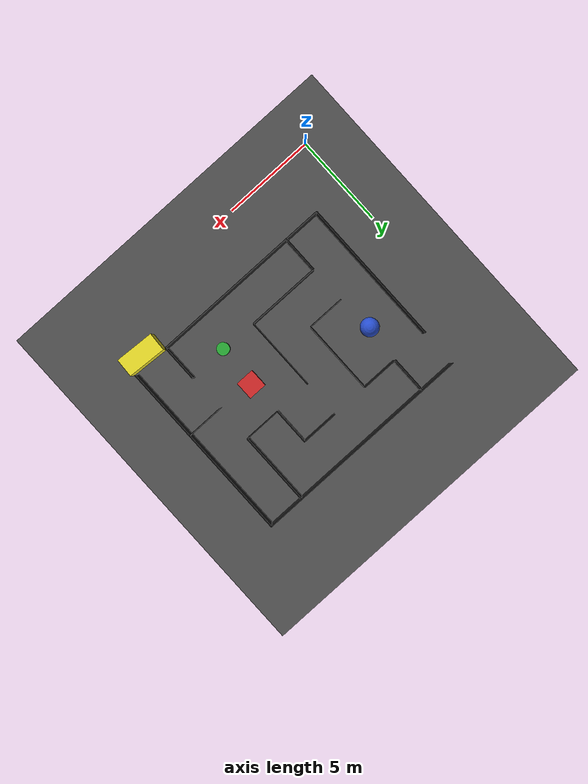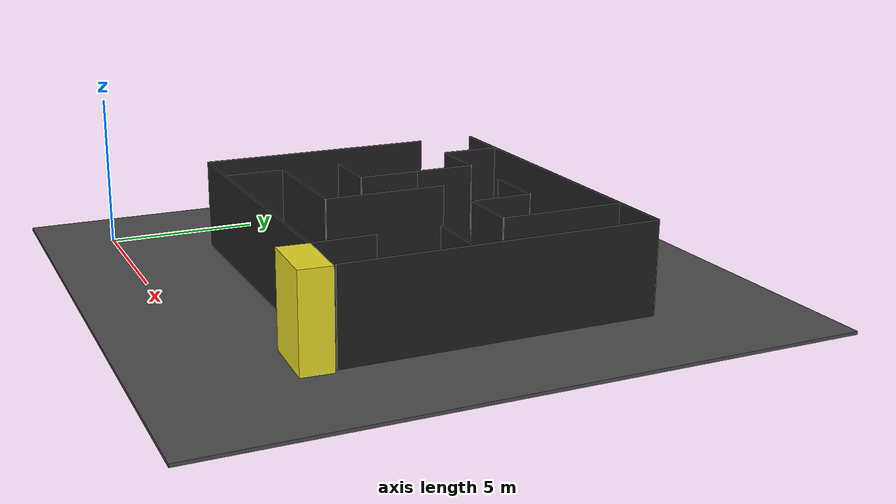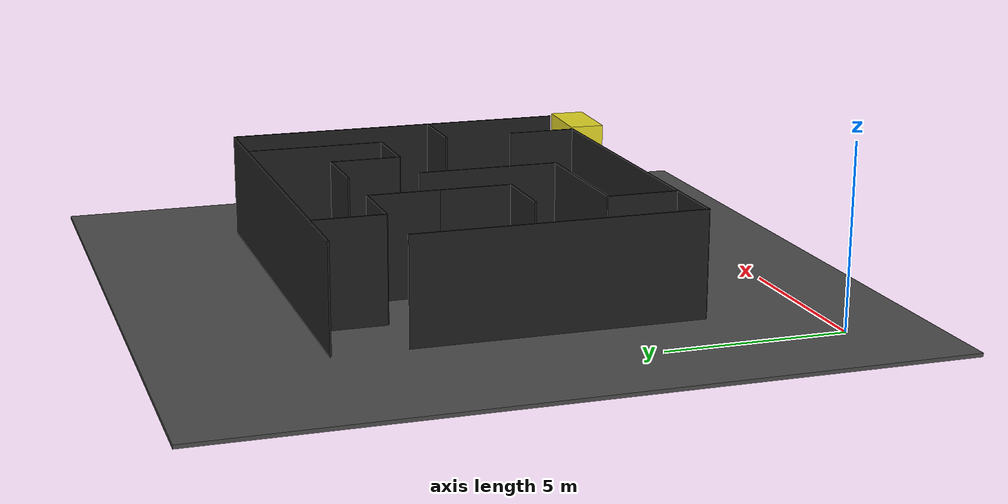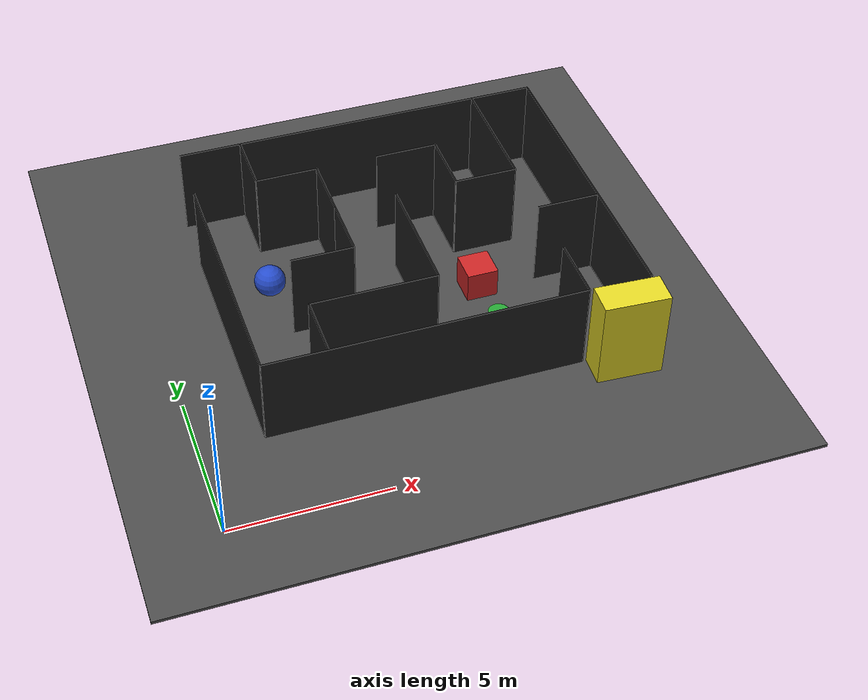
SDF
<sdf version="1.6">
 <world name="default">
  <model name="box_18">
   <pose>9 11 1.5 0 0 -3.14159</pose>
   <link name="link">
    <inertial>
     <mass>1</mass>
     <inertia><ixx>0</ixx><ixy>0</ixy><ixz>0</ixz><iyy>0</iyy><iyz>0</iyz><izz>0</izz></inertia>
    </inertial>
    <collision name="collision"><geometry><box><size>2 0.05 3</size></box></geometry></collision>
    <visual name="visual">
     <geometry><box><size>2 0.05 3</size></box></geometry>
     <material>
      <script><name>Gazebo/Black</name><uri>file://media/materials/scripts/gazebo.material</uri></script>
     </material>
    </visual>
   </link>
   <static>1</static>
  </model>
  <model name="box_17">
   <pose>10 10 1.5 0 0 -1.5708</pose>
   <link name="link">
    <inertial>
     <mass>1</mass>
     <inertia><ixx>0</ixx><ixy>0</ixy><ixz>0</ixz><iyy>0</iyy><iyz>0</iyz><izz>0</izz></inertia>
    </inertial>
    <collision name="collision"><geometry><box><size>2 0.05 3</size></box></geometry></collision>
    <visual name="visual">
     <geometry><box><size>2 0.05 3</size></box></geometry>
     <material>
      <script><name>Gazebo/Black</name><uri>file://media/materials/scripts/gazebo.material</uri></script>
     </material>
    </visual>
   </link>
   <static>1</static>
  </model>
  <model name="box_16">
   <pose>11 9 1.5 0 -0 0</pose>
   <link name="link">
    <inertial>
     <mass>1</mass>
     <inertia><ixx>0</ixx><ixy>0</ixy><ixz>0</ixz><iyy>0</iyy><iyz>0</iyz><izz>0</izz></inertia>
    </inertial>
    <collision name="collision"><geometry><box><size>2 0.05 3</size></box></geometry></collision>
    <visual name="visual">
     <geometry><box><size>2 0.05 3</size></box></geometry>
     <material>
      <script><name>Gazebo/Black</name><uri>file://media/materials/scripts/gazebo.material</uri></script>
     </material>
    </visual>
   </link>
   <static>1</static>
  </model>
  <model name="box_15">
   <pose>12 11 1.5 0 -0 1.5708</pose>
   <link name="link">
    <inertial>
     <mass>1</mass>
     <inertia><ixx>0</ixx><ixy>0</ixy><ixz>0</ixz><iyy>0</iyy><iyz>0</iyz><izz>0</izz></inertia>
    </inertial>
    <collision name="collision"><geometry><box><size>4 0.05 3</size></box></geometry></collision>
    <visual name="visual">
     <geometry><box><size>4 0.05 3</size></box></geometry>
     <material>
      <script><name>Gazebo/Black</name><uri>file://media/materials/scripts/gazebo.material</uri></script>
     </material>
    </visual>
   </link>
   <static>1</static>
  </model>
  <model name="box_14">
   <pose>13 7 1.5 0 0 -3.14159</pose>
   <link name="link">
    <inertial>
     <mass>1</mass>
     <inertia><ixx>0</ixx><ixy>0</ixy><ixz>0</ixz><iyy>0</iyy><iyz>0</iyz><izz>0</izz></inertia>
    </inertial>
    <collision name="collision"><geometry><box><size>2 0.05 3</size></box></geometry></collision>
    <visual name="visual">
     <geometry><box><size>2 0.05 3</size></box></geometry>
     <material>
      <script><name>Gazebo/Black</name><uri>file://media/materials/scripts/gazebo.material</uri></script>
     </material>
    </visual>
   </link>
   <static>1</static>
  </model>
  <model name="box_13">
   <pose>12 4 1.5 0 -0 1.5708</pose>
   <link name="link">
    <inertial>
     <mass>1</mass>
     <inertia><ixx>0</ixx><ixy>0</ixy><ixz>0</ixz><iyy>0</iyy><iyz>0</iyz><izz>0</izz></inertia>
    </inertial>
    <collision name="collision"><geometry><box><size>2 0.05 3</size></box></geometry></collision>
    <visual name="visual">
     <geometry><box><size>2 0.05 3</size></box></geometry>
     <material>
      <script><name>Gazebo/Black</name><uri>file://media/materials/scripts/gazebo.material</uri></script>
     </material>
    </visual>
   </link>
   <static>1</static>
  </model>
  <model name="box_12">
   <pose>8 7 1.5 0 0 -1.5708</pose>
   <link name="link">
    <inertial>
     <mass>1</mass>
     <inertia><ixx>0</ixx><ixy>0</ixy><ixz>0</ixz><iyy>0</iyy><iyz>0</iyz><izz>0</izz></inertia>
    </inertial>
    <collision name="collision"><geometry><box><size>4 0.05 3</size></box></geometry></collision>
    <visual name="visual">
     <geometry><box><size>4 0.05 3</size></box></geometry>
     <material>
      <script><name>Gazebo/Black</name><uri>file://media/materials/scripts/gazebo.material</uri></script>
     </material>
    </visual>
   </link>
   <static>1</static>
  </model>
  <model name="box_11">
   <pose>6 5 1.5 0 0 -3.14159</pose>
   <link name="link">
    <inertial>
     <mass>1</mass>
     <inertia><ixx>0</ixx><ixy>0</ixy><ixz>0</ixz><iyy>0</iyy><iyz>0</iyz><izz>0</izz></inertia>
    </inertial>
    <collision name="collision"><geometry><box><size>4 0.05 3</size></box></geometry></collision>
    <visual name="visual">
     <geometry><box><size>4 0.05 3</size></box></geometry>
     <material>
      <script><name>Gazebo/Black</name><uri>file://media/materials/scripts/gazebo.material</uri></script>
     </material>
    </visual>
   </link>
   <static>1</static>
  </model>
  <model name="box_10">
   <pose>4 4 1.5 0 0 -1.5708</pose>
   <link name="link">
    <inertial>
     <mass>1</mass>
     <inertia><ixx>0</ixx><ixy>0</ixy><ixz>0</ixz><iyy>0</iyy><iyz>0</iyz><izz>0</izz></inertia>
    </inertial>
    <collision name="collision"><geometry><box><size>2 0.05 3</size></box></geometry></collision>
    <visual name="visual">
     <geometry><box><size>2 0.05 3</size></box></geometry>
     <material>
      <script><name>Gazebo/Black</name><uri>file://media/materials/scripts/gazebo.material</uri></script>
     </material>
    </visual>
   </link>
   <static>1</static>
  </model>
  <model name="box_9">
   <pose>5 7 1.5 0 -0 0</pose>
   <link name="link">
    <inertial>
     <mass>1</mass>
     <inertia><ixx>0</ixx><ixy>0</ixy><ixz>0</ixz><iyy>0</iyy><iyz>0</iyz><izz>0</izz></inertia>
    </inertial>
    <collision name="collision"><geometry><box><size>2 0.05 3</size></box></geometry></collision>
    <visual name="visual">
     <geometry><box><size>2 0.05 3</size></box></geometry>
     <material>
      <script><name>Gazebo/Black</name><uri>file://media/materials/scripts/gazebo.material</uri></script>
     </material>
    </visual>
   </link>
   <static>1</static>
  </model>
  <model name="box_8">
   <pose>6 8 1.5 0 -0 1.5708</pose>
   <link name="link">
    <inertial>
     <mass>1</mass>
     <inertia><ixx>0</ixx><ixy>0</ixy><ixz>0</ixz><iyy>0</iyy><iyz>0</iyz><izz>0</izz></inertia>
    </inertial>
    <collision name="collision"><geometry><box><size>2 0.05 3</size></box></geometry></collision>
    <visual name="visual">
     <geometry><box><size>2 0.05 3</size></box></geometry>
     <material>
      <script><name>Gazebo/Black</name><uri>file://media/materials/scripts/gazebo.material</uri></script>
     </material>
    </visual>
   </link>
   <static>1</static>
  </model>
  <model name="box_7">
   <pose>6 10 1.5 0 -0 1.5708</pose>
   <link name="link">
    <inertial>
     <mass>1</mass>
     <inertia><ixx>0</ixx><ixy>0</ixy><ixz>0</ixz><iyy>0</iyy><iyz>0</iyz><izz>0</izz></inertia>
    </inertial>
    <collision name="collision"><geometry><box><size>2 0.05 3</size></box></geometry></collision>
    <visual name="visual">
     <geometry><box><size>2 0.05 3</size></box></geometry>
     <material>
      <script><name>Gazebo/Black</name><uri>file://media/materials/scripts/gazebo.material</uri></script>
     </material>
    </visual>
   </link>
   <static>1</static>
  </model>
  <model name="box_6">
   <pose>5 11 1.5 0 0 -3.14159</pose>
   <link name="link">
    <inertial>
     <mass>1</mass>
     <inertia><ixx>0</ixx><ixy>0</ixy><ixz>0</ixz><iyy>0</iyy><iyz>0</iyz><izz>0</izz></inertia>
    </inertial>
    <collision name="collision"><geometry><box><size>2 0.05 3</size></box></geometry></collision>
    <visual name="visual">
     <geometry><box><size>2 0.05 3</size></box></geometry>
     <material>
      <script><name>Gazebo/Black</name><uri>file://media/materials/scripts/gazebo.material</uri></script>
     </material>
    </visual>
   </link>
   <static>1</static>
  </model>
  <model name="box_5">
   <pose>4 12 1.5 0 -0 1.5708</pose>
   <link name="link">
    <inertial>
     <mass>1</mass>
     <inertia><ixx>0</ixx><ixy>0</ixy><ixz>0</ixz><iyy>0</iyy><iyz>0</iyz><izz>0</izz></inertia>
    </inertial>
    <collision name="collision"><geometry><box><size>2 0.05 3</size></box></geometry></collision>
    <visual name="visual">
     <geometry><box><size>2 0.05 3</size></box></geometry>
     <material>
      <script><name>Gazebo/Black</name><uri>file://media/materials/scripts/gazebo.material</uri></script>
     </material>
    </visual>
   </link>
   <static>1</static>
  </model>
  <model name="box_4">
   <pose>2 7 1.5 0 0 -1.5708</pose>
   <link name="link">
    <inertial>
     <mass>1</mass>
     <inertia><ixx>0</ixx><ixy>0</ixy><ixz>0</ixz><iyy>0</iyy><iyz>0</iyz><izz>0</izz></inertia>
    </inertial>
    <collision name="collision"><geometry><box><size>8 0.05 3</size></box></geometry></collision>
    <visual name="visual">
     <geometry><box><size>8 0.05 3</size></box></geometry>
     <material>
      <script><name>Gazebo/Black</name><uri>file://media/materials/scripts/gazebo.material</uri></script>
     </material>
    </visual>
   </link>
   <static>1</static>
  </model>
  <model name="box_3">
   <pose>7 3 1.5 0 -0 0</pose>
   <link name="link">
    <inertial>
     <mass>1</mass>
     <inertia><ixx>0</ixx><ixy>0</ixy><ixz>0</ixz><iyy>0</iyy><iyz>0</iyz><izz>0</izz></inertia>
    </inertial>
    <collision name="collision"><geometry><box><size>10 0.05 3</size></box></geometry></collision>
    <visual name="visual">
     <geometry><box><size>10 0.05 3</size></box></geometry>
     <material>
      <script><name>Gazebo/Black</name><uri>file://media/materials/scripts/gazebo.material</uri></script>
     </material>
    </visual>
   </link>
   <static>1</static>
  </model>
  <model name="box_2">
   <pose>14 8 1.5 0 -0 1.5708</pose>
   <link name="link">
    <inertial>
     <mass>1</mass>
     <inertia><ixx>0</ixx><ixy>0</ixy><ixz>0</ixz><iyy>0</iyy><iyz>0</iyz><izz>0</izz></inertia>
    </inertial>
    <collision name="collision"><geometry><box><size>10 0.05 3</size></box></geometry></collision>
    <visual name="visual">
     <geometry><box><size>10 0.05 3</size></box></geometry>
     <material>
      <script><name>Gazebo/Black</name><uri>file://media/materials/scripts/gazebo.material</uri></script>
     </material>
    </visual>
   </link>
   <static>1</static>
  </model>
  <model name="box_1">
   <pose>8 13 1.5 0 0 -3.14159</pose>
   <link name="link">
    <inertial>
     <mass>1</mass>
     <inertia><ixx>0</ixx><ixy>0</ixy><ixz>0</ixz><iyy>0</iyy><iyz>0</iyz><izz>0</izz></inertia>
    </inertial>
    <collision name="collision"><geometry><box><size>12 0.05 3</size></box></geometry></collision>
    <visual name="visual">
     <geometry><box><size>12 0.05 3</size></box></geometry>
     <material>
      <script><name>Gazebo/Black</name><uri>file://media/materials/scripts/gazebo.material</uri></script>
     </material>
    </visual>
   </link>
   <static>1</static>
  </model>
  <light name="user_point_light_0" type="point">
   <pose>0 0 5 0 -0 0</pose>
   <diffuse>0.5 0.5 0.5 1</diffuse>
   <specular>0.1 0.1 0.1 1</specular>
   <attenuation>
    <range>1000</range>
    <constant>0.05</constant>
    <linear>0.01</linear>
    <quadratic>0.001</quadratic>
   </attenuation>
   <cast_shadows>0</cast_shadows>
   <direction>0 0 -1</direction>
  </light>
  <light name="user_point_light_1" type="point">
   <pose>20 0 5 0 -0 0</pose>
   <diffuse>0.5 0.5 0.5 1</diffuse>
   <specular>0.1 0.1 0.1 1</specular>
   <attenuation>
    <range>1000</range>
    <constant>0.05</constant>
    <linear>0.01</linear>
    <quadratic>0.001</quadratic>
   </attenuation>
   <cast_shadows>0</cast_shadows>
   <direction>0 0 -1</direction>
  </light>
  <light name="user_point_light_2" type="point">
   <pose>0 20 5 0 -0 0</pose>
   <diffuse>0.5 0.5 0.5 1</diffuse>
   <specular>0.1 0.1 0.1 1</specular>
   <attenuation>
    <range>1000</range>
    <constant>0.05</constant>
    <linear>0.01</linear>
    <quadratic>0.001</quadratic>
   </attenuation>
   <cast_shadows>0</cast_shadows>
   <direction>0 0 -1</direction>
  </light>
  <light name="user_point_light_3" type="point">
   <pose>20 20 5 0 -0 0</pose>
   <diffuse>0.5 0.5 0.5 1</diffuse>
   <specular>0.1 0.1 0.1 1</specular>
   <attenuation>
    <range>1000</range>
    <constant>0.05</constant>
    <linear>0.01</linear>
    <quadratic>0.001</quadratic>
   </attenuation>
   <cast_shadows>0</cast_shadows>
   <direction>0 0 -1</direction>
  </light>
  <light name="user_point_light_4" type="point">
   <pose>10 10 5 0 -0 0</pose>
   <diffuse>0.5 0.5 0.5 1</diffuse>
   <specular>0.1 0.1 0.1 1</specular>
   <attenuation>
    <range>1000</range>
    <constant>0.05</constant>
    <linear>0.01</linear>
    <quadratic>0.001</quadratic>
   </attenuation>
   <cast_shadows>0</cast_shadows>
   <direction>0 0 -1</direction>
  </light>
  <gravity>0 0 -9.8</gravity>
  <magnetic_field>6e-06 2.3e-05 -4.2e-05</magnetic_field>
  <atmosphere type="adiabatic"/>
  <physics name="default_physics" default="0" type="ode">
   <max_step_size>0.001</max_step_size>
   <real_time_factor>1</real_time_factor>
   <real_time_update_rate>1000</real_time_update_rate>
  </physics>
  <scene><ambient>0.4 0.4 0.4 1</ambient><background>0.7 0.7 0.7 1</background><shadows>1</shadows></scene>
  <audio><device>default</device></audio>
  <spherical_coordinates>
   <surface_model>EARTH_WGS84</surface_model>
   <latitude_deg>0</latitude_deg>
   <longitude_deg>0</longitude_deg>
   <elevation>0</elevation>
   <heading_deg>0</heading_deg>
  </spherical_coordinates>
  <model name="asphalt_plane">
   <static>1</static>
   <link name="link">
    <collision name="collision"><geometry><box><size>20 20 0.1</size></box></geometry></collision>
    <visual name="visual">
     <cast_shadows>0</cast_shadows>
     <geometry><box><size>20 20 0.1</size></box></geometry>
     <material>
      <script>
       <uri>model://asphalt_plane/materials/scripts</uri>
       <uri>model://asphalt_plane/materials/textures</uri>
       <name>vrc/asphalt</name>
      </script>
     </material>
    </visual>
   </link>
   <pose>7.42918 7.60134 0 0 -0 0</pose>
  </model>
  <model name="unit_box">
   <pose>13.1286 2.44195 1.53855 -0 1e-06 -0.055792</pose>
   <link name="link">
    <inertial>
     <mass>1</mass>
     <inertia>
      <ixx>0.166667</ixx>
      <ixy>0</ixy>
      <ixz>0</ixz>
      <iyy>0.166667</iyy>
      <iyz>0</iyz>
      <izz>0.166667</izz>
     </inertia>
    </inertial>
    <collision name="collision"><geometry><box><size>2.07447 1 2.97709</size></box></geometry></collision>
    <visual name="visual">
     <geometry><box><size>2.07447 1 2.97709</size></box></geometry>
     <material>
      <script><name>Gazebo/Yellow</name><uri>file://media/materials/scripts/gazebo.material</uri></script>
     </material>
    </visual>
   </link>
  </model>
  <model name="unit_box_0">
   <pose>10.1071 7.14 0.55 0 -0 3e-06</pose>
   <link name="link">
    <inertial>
     <mass>1</mass>
     <inertia>
      <ixx>0.166667</ixx>
      <ixy>0</ixy>
      <ixz>0</ixz>
      <iyy>0.166667</iyy>
      <iyz>0</iyz>
      <izz>0.166667</izz>
     </inertia>
    </inertial>
    <collision name="collision"><geometry><box><size>1 1 1</size></box></geometry></collision>
    <visual name="visual">
     <geometry><box><size>1 1 1</size></box></geometry>
     <material>
      <script><name>Gazebo/Red</name><uri>file://media/materials/scripts/gazebo.material</uri></script>
     </material>
    </visual>
   </link>
  </model>
  <model name="unit_sphere">
   <pose>3.78758 8.98771 0.55 0 -0 0</pose>
   <link name="link">
    <inertial>
     <mass>1</mass>
     <inertia><ixx>0.1</ixx><ixy>0</ixy><ixz>0</ixz><iyy>0.1</iyy><iyz>0</iyz><izz>0.1</izz></inertia>
    </inertial>
    <collision name="collision"><geometry><sphere><radius>0.5</radius></sphere></geometry></collision>
    <visual name="visual">
     <geometry><sphere><radius>0.5</radius></sphere></geometry>
     <material>
      <script><name>Gazebo/Blue</name><uri>file://media/materials/scripts/gazebo.material</uri></script>
     </material>
    </visual>
   </link>
  </model>
  <model name="unit_cylinder">
   <pose>9.96384 4.88907 0.550001 2e-06 1e-06 -5.1e-05</pose>
   <link name="link">
    <inertial>
     <mass>1</mass>
     <inertia><ixx>0.145833</ixx><ixy>0</ixy><ixz>0</ixz><iyy>0.145833</iyy><iyz>0</iyz><izz>0.125</izz></inertia>
    </inertial>
    <collision name="collision">
     <geometry><cylinder><radius>0.337365</radius><length>1</length></cylinder></geometry>
    </collision>
    <visual name="visual">
     <geometry><cylinder><radius>0.337365</radius><length>1</length></cylinder></geometry>
     <material>
      <script><name>Gazebo/Green</name><uri>file://media/materials/scripts/gazebo.material</uri></script>
     </material>
    </visual>
   </link>
  </model>
 </world>
</sdf>
